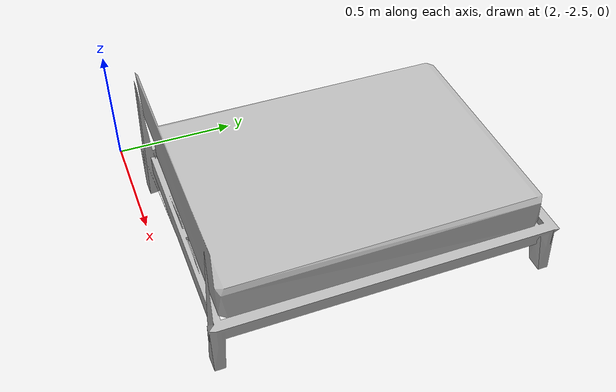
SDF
<?xml version="1.0" ?>
<sdf version="1.5">
  <model name="unit-bed">
    <static>true</static>
    <link name="link">
      <collision name='collision'>
         <pose>2.75 -1.76 0.2635 0 0 0</pose>
         <geometry>
            <box>
            <size>1.05 1.35 0.497</size>
          </box>
        </geometry>
     </collision>
      <visual name="visual">
        <cast_shadows>true</cast_shadows>
        <geometry>
            <mesh>
                <uri>model://bed/meshes/bed.dae</uri>
            </mesh>
        </geometry>
      </visual>
    </link>
  </model>
</sdf>
